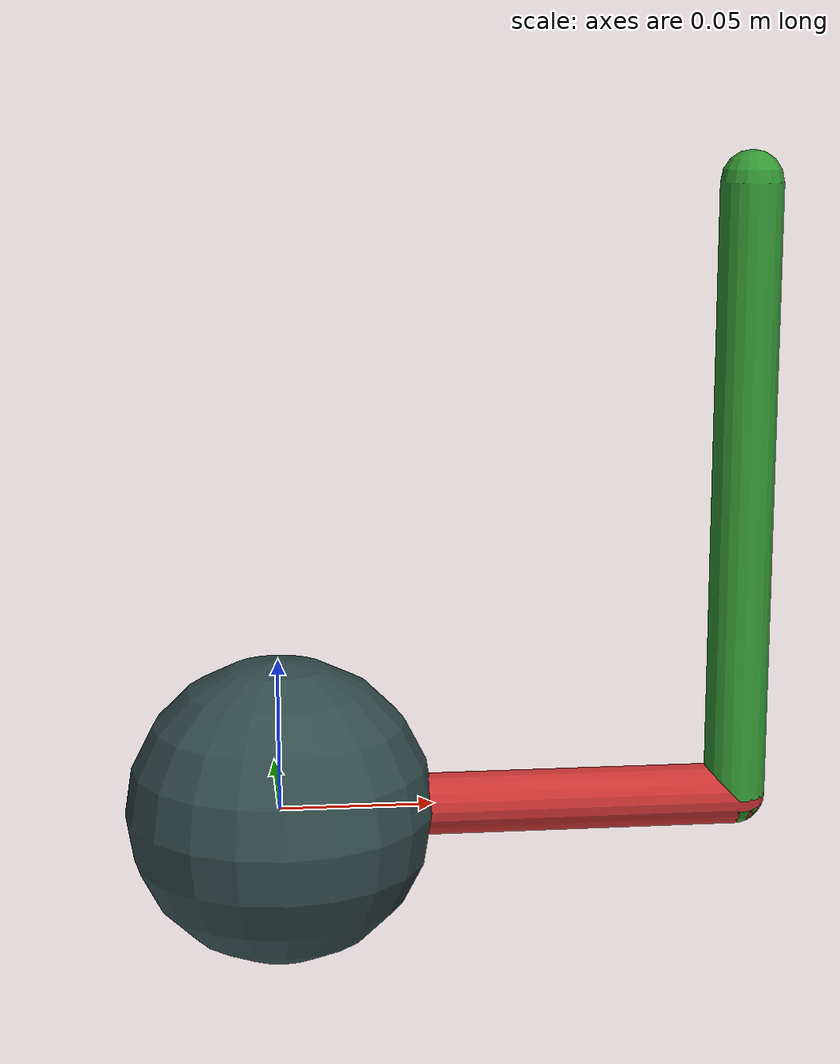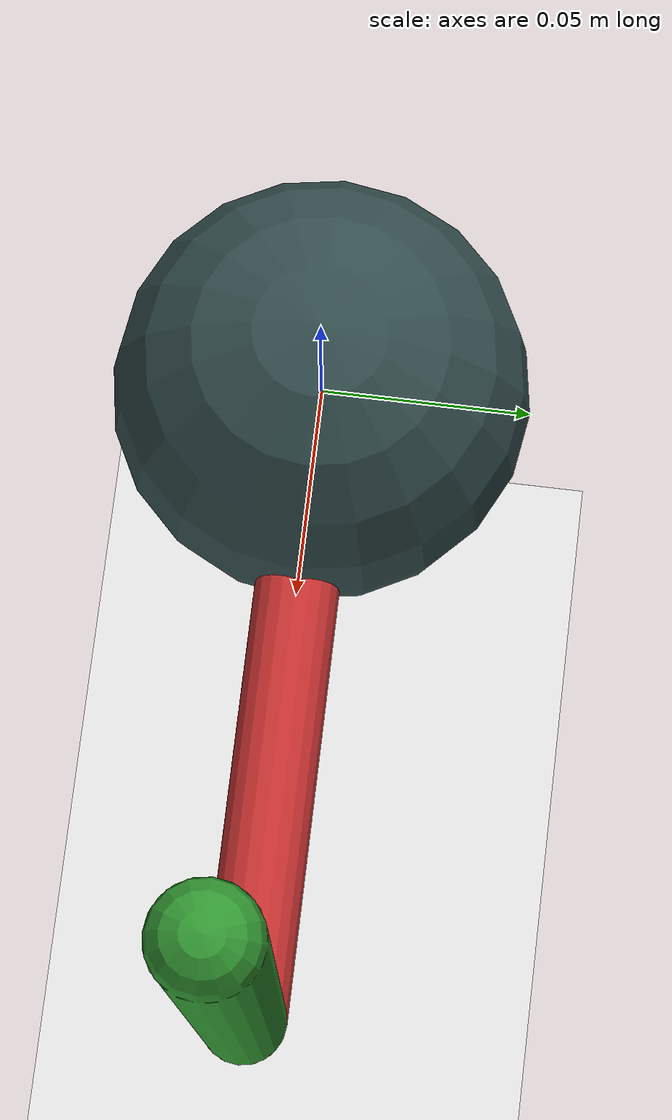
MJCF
<mujoco>
    <compiler angle="radian" coordinate="local"/>
    <option timestep="0.002" gravity="0 0 -9.81"/>

    <!-- VISUAL -->
    <visual>
        <headlight diffuse="0.4 0.4 0.4" ambient="0.2 0.2 0.2"/>
        <rgba haze="0.8 0.9 1 1"/>
        <quality shadowsize="4096" offsamples="8"/>
    </visual>

    <!-- ASSETS -->
    <asset>
        <!-- cielo con gradiente -->
        <texture type="skybox" builtin="gradient"
                 rgb1="1 1 1"
                 rgb2="0.7 0.85 1"
                 width="512" height="512"/>

        <!-- material piso -->
        <material name="floor_mat"
                  rgba="0.9 0.9 0.9 1"
                  specular="0.2"
                  shininess="0.3"/>

        <!-- materiales robot -->
        <material name="arm_mat"
                  rgba="0.8 0.2 0.2 1"
                  specular="0.5"
                  shininess="0.4"/>

        <material name="pendulum_mat"
                  rgba="0.2 0.6 0.2 1"
                  specular="0.5"
                  shininess="0.4"/>
    </asset>

    <worldbody>

        <!-- luces -->
        <light pos="0 0 3" dir="0 0 -1" castshadow="true"/>
        <light pos="2 2 3" diffuse="0.6 0.6 0.6" castshadow="true"/>

        <!-- piso -->
        <geom type="plane"
              pos="0 0 -0.4"
              size="3 3 0.1"
              material="floor_mat"
              contype="0"
              conaffinity="0"/>

        <body name="base" pos="0 0 0">
            <geom type="sphere"
                  size="0.05"
                  rgba="0.2 0.3 0.3 1"
                  contype="0"
                  conaffinity="0"/>

            <body name="link1" pos="0 0 0">
                <joint name="joint1" type="hinge" axis="0 0 1"/>

                <geom type="capsule"
                      fromto="0 0 0 0.15 0 0"
                      size="0.01"
                      mass="0.045"
                      material="arm_mat"/>

                <body name="pendulum" pos="0.15 0 0">
                    <joint name="encoder_joint"
                           type="hinge"
                           axis="1 0 0"
                           damping="0.0005"/>

                    <geom type="capsule"
                          fromto="0 0 0 0 0 0.2"
                          size="0.01"
                          mass="0.032"
                          material="pendulum_mat"/>
                </body>

            </body>
        </body>
    </worldbody>

    <actuator>
        <motor name="dc_motor" joint="joint1" gear="1"/>
    </actuator>

    <sensor>
        <jointpos joint="encoder_joint"/>
    </sensor>

</mujoco>
